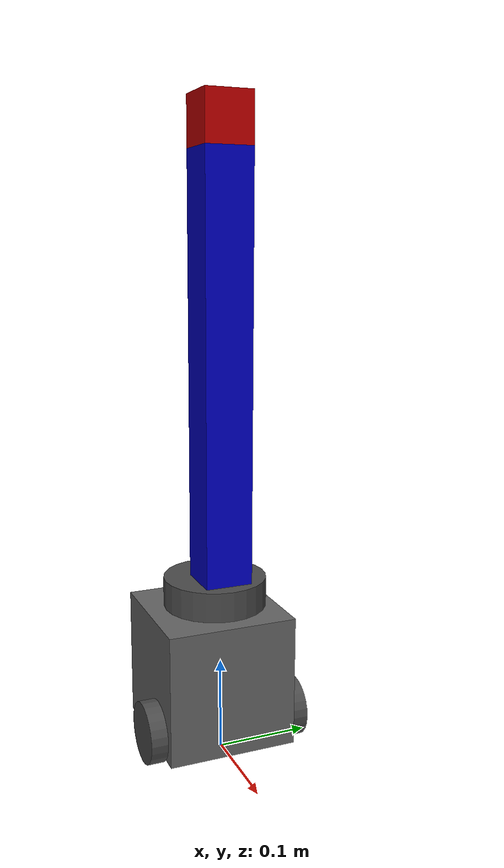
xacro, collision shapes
<?xml version="1.0"?>
<robot name="alberto" xmlns:xacro="http://ros.org/wiki/xacro">
  <xacro:include filename="$(find alberto_description)/urdf/common_properties.xacro" />
  <xacro:include filename="$(find alberto_description)/urdf/alberto.gazebo.xacro" />
  <xacro:property name="camera_link" value="0.05" />

  <link name="base_footprint" />

  <joint name="base_joint" type="fixed">
    <parent link="base_footprint" />
    <child link="base_link" />
    <origin xyz="0.0 0.0 0.010" rpy="0 0 0" />
  </joint>

  <link name="base_link">
    <visual>
      <origin xyz="-0.032 0 0.0" rpy="0 0 0" />
      <geometry>
        <mesh filename="package://turtlebot3_description/meshes/bases/burger_base.stl"
          scale="0.001 0.001 0.001" />
      </geometry>
      <material name="light_black" />
    </visual>

    <collision>
      <origin xyz="-0.032 0 0.070" rpy="0 0 0" />
      <geometry>
        <box size="0.140 0.140 0.143" />
      </geometry>
    </collision>

    <inertial>
      <origin xyz="0 0 0" rpy="0 0 0" />
      <mass value="8.2573504e-01" />
      <inertia ixx="2.2124416e-03" ixy="-1.2294101e-05" ixz="3.4938785e-05"
        iyy="2.1193702e-03" iyz="-5.0120904e-06"
        izz="2.0064271e-03" />
    </inertial>
  </link>

  <joint name="wheel_left_joint" type="continuous">
    <parent link="base_link" />
    <child link="wheel_left_link" />
    <origin xyz="0.0 0.08 0.023" rpy="-1.57 0 0" />
    <axis xyz="0 0 1" />
  </joint>

  <link name="wheel_left_link">
    <visual>
      <origin xyz="0 0 0" rpy="1.57 0 0" />
      <geometry>
        <mesh filename="package://turtlebot3_description/meshes/wheels/left_tire.stl"
          scale="0.001 0.001 0.001" />
      </geometry>
      <material name="dark" />
    </visual>

    <collision>
      <origin xyz="0 0 0" rpy="0 0 0" />
      <geometry>
        <cylinder length="0.018" radius="0.033" />
      </geometry>
    </collision>

    <inertial>
      <origin xyz="0 0 0" />
      <mass value="2.8498940e-02" />
      <inertia ixx="1.1175580e-05" ixy="-4.2369783e-11" ixz="-5.9381719e-09"
        iyy="1.1192413e-05" iyz="-1.4400107e-11"
        izz="2.0712558e-05" />
    </inertial>
  </link>

  <joint name="wheel_right_joint" type="continuous">
    <parent link="base_link" />
    <child link="wheel_right_link" />
    <origin xyz="0.0 -0.080 0.023" rpy="-1.57 0 0" />
    <axis xyz="0 0 1" />
  </joint>

  <link name="wheel_right_link">
    <visual>
      <origin xyz="0 0 0" rpy="1.57 0 0" />
      <geometry>
        <mesh filename="package://turtlebot3_description/meshes/wheels/right_tire.stl"
          scale="0.001 0.001 0.001" />
      </geometry>
      <material name="dark" />
    </visual>

    <collision>
      <origin xyz="0 0 0" rpy="0 0 0" />
      <geometry>
        <cylinder length="0.018" radius="0.033" />
      </geometry>
    </collision>

    <inertial>
      <origin xyz="0 0 0" />
      <mass value="2.8498940e-02" />
      <inertia ixx="1.1175580e-05" ixy="-4.2369783e-11" ixz="-5.9381719e-09"
        iyy="1.1192413e-05" iyz="-1.4400107e-11"
        izz="2.0712558e-05" />
    </inertial>
  </link>

  <joint name="caster_back_joint" type="fixed">
    <parent link="base_link" />
    <child link="caster_back_link" />
    <origin xyz="-0.081 0 -0.004" rpy="-1.57 0 0" />
  </joint>

  <link name="caster_back_link">
    <collision>
      <origin xyz="0 0.001 0" rpy="0 0 0" />
      <geometry>
        <box size="0.030 0.009 0.020" />
      </geometry>
    </collision>

    <inertial>
      <origin xyz="0 0 0" />
      <mass value="0.005" />
      <inertia ixx="0.001" ixy="0.0" ixz="0.0"
        iyy="0.001" iyz="0.0"
        izz="0.001" />
    </inertial>
  </link>

  <joint name="imu_joint" type="fixed">
    <parent link="base_link" />
    <child link="imu_link" />
    <origin xyz="-0.032 0 0.068" rpy="0 0 0" />
  </joint>

  <link name="imu_link" />

  <joint name="scan_joint" type="fixed">
    <parent link="base_link" />
    <child link="base_scan" />
    <origin xyz="-0.032 0 0.172" rpy="0 0 0" />
  </joint>

  <link name="base_scan">
    <visual>
      <origin xyz="0 0 0.0" rpy="0 0 0" />
      <geometry>
        <mesh filename="package://turtlebot3_description/meshes/sensors/lds.stl"
          scale="0.001 0.001 0.001" />
      </geometry>
      <material name="dark" />
    </visual>

    <collision>
      <origin xyz="0.015 0 -0.0065" rpy="0 0 0" />
      <geometry>
        <cylinder length="0.0315" radius="0.055" />
      </geometry>
    </collision>

    <inertial>
      <mass value="0.114" />
      <origin xyz="0 0 0" />
      <inertia ixx="0.001" ixy="0.0" ixz="0.0"
        iyy="0.001" iyz="0.0"
        izz="0.001" />
    </inertial>
  </link>

  <joint name="camera_arm_joint" type="fixed">
    <axis xyz="0 1 0" />
    <origin xyz="0 0 0.4" rpy="0 0 0" />
    <parent link="base_link" />
    <child link="camera_arm_link" />
  </joint>

  <link name="camera_arm_link">
    <collision>
      <origin xyz="0 0 0" rpy="0 0 0" />
      <geometry>
        <box size="${camera_link} ${camera_link} 0.435" />
      </geometry>
    </collision>

    <visual>
      <origin xyz="0 0 0" rpy="0 0 0" />
      <geometry>
        <box size="${camera_link} ${camera_link} 0.435" />
      </geometry>
      <material name="blue" />
    </visual>

    <inertial>
      <mass value="1e-5" />
      <origin xyz="0 0 0" rpy="0 0 0" />
      <inertia ixx="1e-6" ixy="0" ixz="0" iyy="1e-6" iyz="0" izz="1e-6" />
    </inertial>
  </link>

  <joint name="depth_camera_joint" type="fixed">
    <axis xyz="0 0 0" />
    <origin xyz="0 0 0.2425" rpy="0 0 0" />
    <parent link="camera_arm_link" />
    <child link="depth_camera_link" />
  </joint>

  <!-- depth camera -->
  <link name="depth_camera_link">
    <collision>
      <origin xyz="0 0 0" rpy="0 0 0" />
      <geometry>
        <box size="${camera_link} ${camera_link} ${camera_link}" />
      </geometry>
    </collision>

    <visual>
      <origin xyz="0 0 0" rpy="0 0 0" />
      <geometry>
        <box size="${camera_link} ${camera_link} ${camera_link}" />
      </geometry>
      <material name="red" />
    </visual>

    <inertial>
      <mass value="1e-5" />
      <origin xyz="0 0 0" rpy="0 0 0" />
      <inertia ixx="1e-6" ixy="0" ixz="0" iyy="1e-6" iyz="0" izz="1e-6" />
    </inertial>
  </link>

</robot>

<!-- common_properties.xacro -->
<robot name="xacro_properties" xmlns:xacro="http://ros.org/wiki/xacro">

  <!-- Init colour -->
  <material name="black">
      <color rgba="0.0 0.0 0.0 1.0"/>
  </material>

  <material name="dark">
    <color rgba="0.3 0.3 0.3 1.0"/>
  </material>
  <material name="light_black">
    <color rgba="0.4 0.4 0.4 1.0"/>
  </material>

  <material name="blue">
    <color rgba="0.0 0.0 0.8 1.0"/>
  </material>

  <material name="green">
    <color rgba="0.0 0.8 0.0 1.0"/>
  </material>

  <material name="grey">
    <color rgba="0.5 0.5 0.5 1.0"/>
  </material>

  <material name="orange">
    <color rgba="${255/255} ${108/255} ${10/255} 1.0"/>
  </material>

  <material name="brown">
    <color rgba="${222/255} ${207/255} ${195/255} 1.0"/>
  </material>

  <material name="red">
    <color rgba="0.8 0.0 0.0 1.0"/>
  </material>

  <material name="white">
    <color rgba="1.0 1.0 1.0 1.0"/>
  </material>

</robot>
